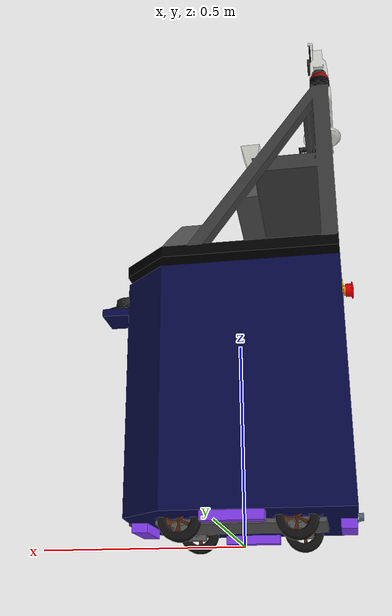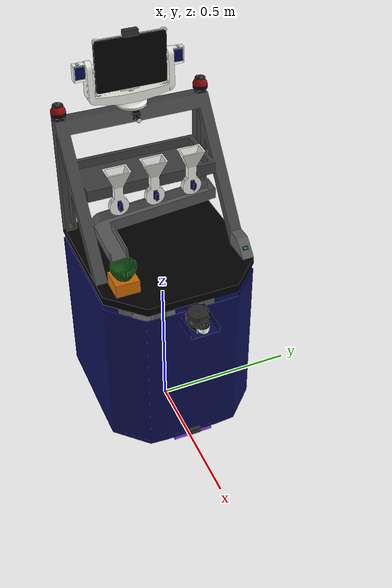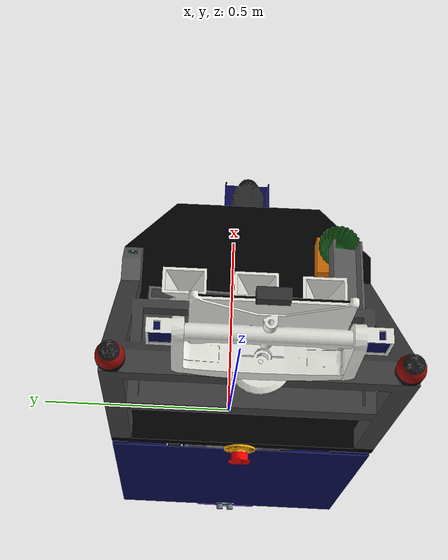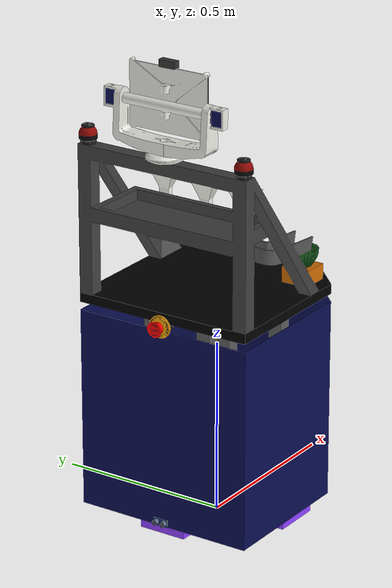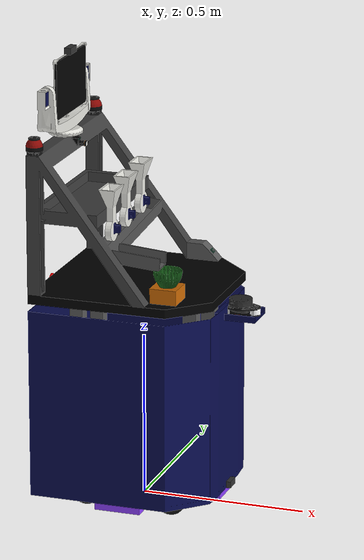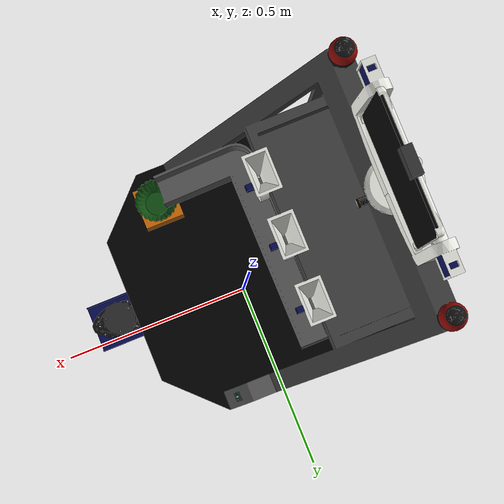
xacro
<?xml version="1.0"?>
<robot name="scobo" xmlns:xacro="http://www.ros.org/wiki/xacro">

  <!-- SCOBO description with the Gazebo plugins and sensors -->
  <xacro:arg name="mesh_dir" default="file://$(find scobo_description)/meshes"/>
  <xacro:include filename="$(find scobo_description)/urdf/scobo.urdf.xacro"/>

  <!-- also given to wheel_odometry in sim.launch.py -->
  <xacro:property name="wheel_radius_sim" value="0.0482"/>
  <xacro:property name="wheel_separation_sim" value="0.3179"/>

  <ros2_control name="GazeboSystem" type="system">
    <hardware>
      <plugin>gazebo_ros2_control/GazeboSystem</plugin>
    </hardware>

    <!-- moved and held by pan_tilt_controller -->
    <joint name="display_pan_joint">
      <command_interface name="position"/>
      <state_interface name="position">
        <param name="initial_value">0.0</param>
      </state_interface>
    </joint>
    <joint name="display_tilt_joint">
      <command_interface name="position"/>
      <state_interface name="position">
        <param name="initial_value">0.0</param>
      </state_interface>
    </joint>
  </ros2_control>

  <xacro:macro name="wheel_slip" params="name">
    <wheel link_name="${name}_wheel">
      <slip_compliance_lateral>3.0</slip_compliance_lateral>
      <slip_compliance_longitudinal>0.0</slip_compliance_longitudinal>
      <wheel_normal_force>${robot_mass * 9.81 / 4}</wheel_normal_force>
    </wheel>
  </xacro:macro>

  <gazebo>
    <plugin filename="libgazebo_ros2_control.so" name="gazebo_ros2_control">
      <parameters>$(find scobo_gazebo)/config/controllers.yaml</parameters>
    </plugin>

    <!-- 4WD skid steer on cmd_vel, 2.4 Nm per wheel. Effective track 1.12 x 0.2838 m
         as the wheels slip in turns. Odometry comes from wheel_odometry -->
    <plugin filename="libgazebo_ros_diff_drive.so" name="diff_drive">
      <update_rate>100</update_rate>
      <num_wheel_pairs>2</num_wheel_pairs>
      <left_joint>front_left_wheel_joint</left_joint>
      <right_joint>front_right_wheel_joint</right_joint>
      <left_joint>rear_left_wheel_joint</left_joint>
      <right_joint>rear_right_wheel_joint</right_joint>
      <wheel_separation>${wheel_separation_sim}</wheel_separation>
      <wheel_separation>${wheel_separation_sim}</wheel_separation>
      <wheel_diameter>${2 * wheel_radius_sim}</wheel_diameter>
      <wheel_diameter>${2 * wheel_radius_sim}</wheel_diameter>
      <max_wheel_torque>2.4</max_wheel_torque>
      <max_wheel_acceleration>0.5</max_wheel_acceleration>
      <publish_odom>false</publish_odom>
      <publish_odom_tf>false</publish_odom_tf>
      <publish_wheel_tf>false</publish_wheel_tf>
    </plugin>

    <!-- encoder angles for wheel_odometry and robot_state_publisher -->
    <plugin filename="libgazebo_ros_joint_state_publisher.so" name="wheel_states">
      <update_rate>50</update_rate>
      <joint_name>front_left_wheel_joint</joint_name>
      <joint_name>rear_left_wheel_joint</joint_name>
      <joint_name>front_right_wheel_joint</joint_name>
      <joint_name>rear_right_wheel_joint</joint_name>
    </plugin>

    <!-- sideways tyre compliance for skid steer turns -->
    <plugin filename="libWheelSlipPlugin.so" name="wheel_slip">
      <xacro:wheel_slip name="front_left"/>
      <xacro:wheel_slip name="rear_left"/>
      <xacro:wheel_slip name="front_right"/>
      <xacro:wheel_slip name="rear_right"/>
    </plugin>

    <!-- true pose, to check odometry -->
    <plugin filename="libgazebo_ros_p3d.so" name="ground_truth">
      <ros>
        <remapping>odom:=ground_truth</remapping>
      </ros>
      <body_name>base_footprint</body_name>
      <frame_name>world</frame_name>
      <update_rate>50</update_rate>
    </plugin>
  </gazebo>

  <!-- fdir1 is the axle, so mu1 is the sideways grip -->
  <xacro:macro name="wheel_contact" params="name">
    <gazebo reference="${name}_wheel">
      <fdir1>0 0 1</fdir1>
      <mu1>0.3</mu1>
      <mu2>0.8</mu2>
      <kp>1e6</kp>
      <kd>100</kd>
      <minDepth>0.001</minDepth>
      <maxVel>0.1</maxVel>
    </gazebo>
  </xacro:macro>

  <xacro:wheel_contact name="front_left"/>
  <xacro:wheel_contact name="rear_left"/>
  <xacro:wheel_contact name="front_right"/>
  <xacro:wheel_contact name="rear_right"/>

  <!-- RPLidar A1, the frame posts behind it block the rear so only 260 deg is used -->
  <xacro:property name="laser_half_fov" value="130"/>
  <xacro:property name="laser_step" value="0.5"/>

  <gazebo reference="laser">
    <sensor name="rplidar" type="ray">
      <pose>0 0 0 0 0 0</pose>
      <update_rate>5.5</update_rate>
      <visualize>false</visualize>
      <ray>
        <scan>
          <horizontal>
            <samples>${int(2 * laser_half_fov / laser_step) + 1}</samples>
            <resolution>1</resolution>
            <min_angle>${-radians(laser_half_fov)}</min_angle>
            <max_angle>${radians(laser_half_fov)}</max_angle>
          </horizontal>
        </scan>
        <range>
          <min>0.15</min>
          <max>12.0</max>
          <resolution>0.001</resolution>
        </range>
        <noise>
          <type>gaussian</type>
          <mean>0.0</mean>
          <stddev>0.01</stddev>
        </noise>
      </ray>
      <plugin name="rplidar" filename="libgazebo_ros_ray_sensor.so">
        <ros>
          <remapping>~/out:=scan</remapping>
        </ros>
        <output_type>sensor_msgs/LaserScan</output_type>
        <frame_name>laser</frame_name>
      </plugin>
    </sensor>
  </gazebo>

  <!-- BNO055, noise from the datasheet noise densities -->
  <xacro:macro name="imu_noise" params="stddev bias">
    <noise type="gaussian">
      <mean>0.0</mean>
      <stddev>${stddev}</stddev>
      <bias_mean>0.0</bias_mean>
      <bias_stddev>${bias}</bias_stddev>
    </noise>
  </xacro:macro>
  <xacro:property name="gyro_stddev" value="${radians(0.014) * sqrt(50)}"/>
  <xacro:property name="gyro_bias" value="0.0003"/>
  <xacro:property name="accel_stddev" value="${150e-6 * 9.81 * sqrt(50)}"/>
  <xacro:property name="accel_bias" value="0.01"/>

  <gazebo reference="imu_link">
    <sensor name="bno055" type="imu">
      <always_on>true</always_on>
      <update_rate>100</update_rate>
      <imu>
        <angular_velocity>
          <x><xacro:imu_noise stddev="${gyro_stddev}" bias="${gyro_bias}"/></x>
          <y><xacro:imu_noise stddev="${gyro_stddev}" bias="${gyro_bias}"/></y>
          <z><xacro:imu_noise stddev="${gyro_stddev}" bias="${gyro_bias}"/></z>
        </angular_velocity>
        <linear_acceleration>
          <x><xacro:imu_noise stddev="${accel_stddev}" bias="${accel_bias}"/></x>
          <y><xacro:imu_noise stddev="${accel_stddev}" bias="${accel_bias}"/></y>
          <z><xacro:imu_noise stddev="${accel_stddev}" bias="${accel_bias}"/></z>
        </linear_acceleration>
      </imu>
      <plugin name="bno055" filename="libgazebo_ros_imu_sensor.so">
        <ros>
          <remapping>~/out:=imu/data</remapping>
        </ros>
        <frame_name>imu_link</frame_name>
        <initial_orientation_as_reference>false</initial_orientation_as_reference>
      </plugin>
    </sensor>
  </gazebo>

  <!-- HC-SR04, 6 cm above the floor so only the upper half of the cone is used -->
  <xacro:property name="sonar_half_fov" value="${radians(7.5)}"/>

  <xacro:macro name="hc_sr04" params="side">
    <gazebo reference="ultrasonic_${side}_link">
      <sensor name="hc_sr04_${side}" type="ray">
        <pose>0 0 0 0 0 0</pose>
        <update_rate>10</update_rate>
        <visualize>false</visualize>
        <ray>
          <scan>
            <horizontal>
              <samples>7</samples>
              <resolution>1</resolution>
              <min_angle>${-sonar_half_fov}</min_angle>
              <max_angle>${sonar_half_fov}</max_angle>
            </horizontal>
            <vertical>
              <samples>4</samples>
              <resolution>1</resolution>
              <min_angle>0</min_angle>
              <max_angle>${sonar_half_fov}</max_angle>
            </vertical>
          </scan>
          <range>
            <min>0.02</min>
            <max>4.0</max>
            <resolution>0.003</resolution>
          </range>
          <noise>
            <type>gaussian</type>
            <mean>0.0</mean>
            <stddev>0.01</stddev>
          </noise>
        </ray>
        <plugin name="hc_sr04_${side}" filename="libgazebo_ros_ray_sensor.so">
          <ros>
            <remapping>~/out:=range/${side}_sim</remapping>
          </ros>
          <output_type>sensor_msgs/Range</output_type>
          <radiation_type>ultrasound</radiation_type>
          <frame_name>ultrasonic_${side}_link</frame_name>
        </plugin>
      </sensor>
    </gazebo>
  </xacro:macro>

  <xacro:hc_sr04 side="rear"/>
  <xacro:hc_sr04 side="front"/>

  <!-- USB webcam on the tablet holder -->
  <gazebo reference="camera_link">
    <sensor name="webcam" type="camera">
      <update_rate>15</update_rate>
      <visualize>false</visualize>
      <camera>
        <horizontal_fov>${radians(60)}</horizontal_fov>
        <image>
          <width>640</width>
          <height>480</height>
          <format>R8G8B8</format>
        </image>
        <clip>
          <near>0.05</near>
          <far>30</far>
        </clip>
        <noise>
          <type>gaussian</type>
          <mean>0.0</mean>
          <stddev>0.007</stddev>
        </noise>
      </camera>
      <plugin name="webcam" filename="libgazebo_ros_camera.so">
        <camera_name>camera</camera_name>
        <frame_name>camera_optical_frame</frame_name>
      </plugin>
    </sensor>
  </gazebo>

  <!-- MLX90640 55 x 35 deg as a depth camera, fake_thermal makes the temperatures -->
  <xacro:property name="thermal_hfov" value="55"/>
  <xacro:property name="thermal_vfov" value="35"/>
  <xacro:property name="thermal_render_width" value="320"/>

  <gazebo reference="thermal_link">
    <sensor name="mlx90640" type="depth">
      <update_rate>4</update_rate>
      <visualize>true</visualize>
      <camera>
        <horizontal_fov>${radians(thermal_hfov)}</horizontal_fov>
        <image>
          <width>${thermal_render_width}</width>
          <height>${int(round(thermal_render_width * tan(radians(thermal_vfov / 2))
                                / tan(radians(thermal_hfov / 2))))}</height>
          <format>R8G8B8</format>
        </image>
        <clip>
          <near>0.05</near>
          <far>10</far>
        </clip>
      </camera>
      <plugin name="mlx90640" filename="libgazebo_ros_camera.so">
        <camera_name>thermal_sim</camera_name>
        <frame_name>thermal_optical_frame</frame_name>
        <min_depth>0.05</min_depth>
        <max_depth>10</max_depth>
      </plugin>
    </sensor>
  </gazebo>

  <gazebo reference="base_footprint">
    <mu1>0.1</mu1>
    <mu2>0.1</mu2>
  </gazebo>

</robot>

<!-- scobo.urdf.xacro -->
<robot name="scobo" xmlns:xacro="http://www.ros.org/wiki/xacro">

  <xacro:include filename="$(find scobo_description)/urdf/inertial.xacro"/>

  <!-- dimensions from cad/scobo/scobo_final.step, meshes from scripts/export_meshes.py.
       base_link is on the floor under the centre of the wheels. -->
  <xacro:arg name="mesh_dir" default="package://scobo_description/meshes"/>
  <xacro:property name="mesh_dir" value="$(arg mesh_dir)"/>

  <xacro:property name="robot_mass" value="25.0"/>

  <!-- PG36M555 wheels, 4WD skid steer -->
  <xacro:property name="wheel_radius" value="0.0482"/>
  <xacro:property name="wheel_width" value="0.0344"/>
  <xacro:property name="wheel_x" value="0.1338"/>    <!-- half wheelbase -->
  <xacro:property name="wheel_y" value="0.1419"/>    <!-- half track -->
  <xacro:property name="wheel_mass" value="0.3"/>
  <!-- gear motor output, 2.4 Nm at 50 RPM -->
  <xacro:property name="wheel_max_torque" value="2.4"/>
  <xacro:property name="wheel_max_speed" value="${50 * 2 * pi / 60}"/>

  <!-- lower body shell, the lidar scans through the gap above it -->
  <xacro:property name="body_x_min" value="-0.2675"/>
  <xacro:property name="body_x_max" value="0.2671"/>
  <xacro:property name="body_width" value="0.530"/>
  <xacro:property name="body_z_min" value="0.0528"/>
  <xacro:property name="body_z_max" value="0.6298"/>
  <xacro:property name="plate_z_min" value="0.6528"/>
  <xacro:property name="plate_z_max" value="0.6808"/>

  <!-- rear posts and top beam of the upper frame -->
  <xacro:property name="frame_rear_x" value="-0.2475"/>
  <xacro:property name="frame_top_z" value="1.1028"/>

  <!-- RPLidar A1 scan centre, on the front bracket -->
  <xacro:property name="laser_x" value="0.3028"/>
  <xacro:property name="laser_z" value="0.641"/>

  <!-- pan axis on the pan-tilt plate, tilt axis through the MG995 horns -->
  <xacro:property name="pan_x" value="-0.2448"/>
  <xacro:property name="pan_z" value="1.1132"/>
  <xacro:property name="tilt_dx" value="-0.0025"/>
  <xacro:property name="tilt_dz" value="0.1364"/>

  <!-- iPad and its holder from the tilt axis -->
  <xacro:property name="holder_dx" value="0.0183"/>
  <xacro:property name="holder_dz" value="0.0134"/>
  <xacro:property name="holder_size" value="0.014 0.242 0.186"/>
  <xacro:property name="screen_top_dz" value="0.0992"/>

  <!-- estimated split of the 25 kg, the lower body gets the rest -->
  <xacro:property name="upper_mass" value="5.0"/>
  <xacro:property name="pan_mass" value="0.3"/>
  <xacro:property name="display_mass" value="0.6"/>
  <xacro:property name="laser_mass" value="0.17"/>
  <xacro:property name="sensor_mass" value="0.03"/>
  <xacro:property name="pill_servo_mass" value="0.009"/>
  <xacro:property name="tilt_servo_mass" value="0.055"/>
  <xacro:property name="body_mass"
    value="${robot_mass - 4*wheel_mass - upper_mass - pan_mass - display_mass - laser_mass
            - 5*sensor_mass - 3*pill_servo_mass - 2*tilt_servo_mass}"/>

  <!-- for the boxes, the meshes have their own colours -->
  <material name="sensor_black"><color rgba="0.2 0.2 0.2 1"/></material>
  <material name="uv_violet"><color rgba="0.55 0.25 1.0 1"/></material>

  <link name="base_footprint"/>

  <joint name="base_joint" type="fixed">
    <parent link="base_footprint"/>
    <child link="base_link"/>
    <origin xyz="0 0 0" rpy="0 0 0"/>
  </joint>

  <!-- body shell, plates, motors, e-stop, HC-SR04 and the MAX30102 on its platform -->
  <link name="base_link">
    <visual>
      <geometry><mesh filename="${mesh_dir}/lower_body.dae"/></geometry>
    </visual>
    <collision>
      <origin xyz="${(body_x_min + body_x_max) / 2} 0 ${(body_z_min + body_z_max) / 2}"/>
      <geometry>
        <box size="${body_x_max - body_x_min} ${body_width} ${body_z_max - body_z_min}"/>
      </geometry>
    </collision>
    <xacro:box_inertial m="${body_mass}" x="${body_x_max - body_x_min}" y="${body_width}"
                        z="${body_z_max - body_z_min}">
      <origin xyz="${(body_x_min + body_x_max) / 2} 0 ${(body_z_min + body_z_max) / 2}"/>
    </xacro:box_inertial>
  </link>

  <!-- upper frame with the thermal camera, signal lights and pill dispenser -->
  <joint name="upper_frame_joint" type="fixed">
    <parent link="base_link"/>
    <child link="upper_frame"/>
    <origin xyz="0 0 0"/>
  </joint>

  <link name="upper_frame">
    <visual>
      <geometry><mesh filename="${mesh_dir}/upper_frame.dae"/></geometry>
    </visual>
    <!-- top plate, rear posts and top beam -->
    <collision>
      <origin xyz="${(body_x_min + body_x_max) / 2} 0 ${(plate_z_min + plate_z_max) / 2}"/>
      <geometry>
        <box size="${body_x_max - body_x_min} ${body_width} ${plate_z_max - plate_z_min}"/>
      </geometry>
    </collision>
    <collision>
      <origin xyz="${frame_rear_x} 0 ${(plate_z_max + frame_top_z) / 2}"/>
      <geometry><box size="0.04 ${body_width} ${frame_top_z - plate_z_max}"/></geometry>
    </collision>
    <xacro:box_inertial m="${upper_mass}" x="0.5" y="${body_width}" z="0.45">
      <origin xyz="-0.05 0 0.84"/>
    </xacro:box_inertial>
  </link>

  <!-- SG30 pill servos, numbered from the right as in the CAD -->
  <xacro:macro name="servo" params="name parent mesh mass xyz yaw:=0">
    <joint name="${name}_joint" type="fixed">
      <parent link="${parent}"/>
      <child link="${name}"/>
      <origin xyz="${xyz}"/>
    </joint>
    <link name="${name}">
      <visual>
        <origin xyz="0 0 0" rpy="0 0 ${yaw}"/>
        <geometry><mesh filename="${mesh_dir}/${mesh}.dae"/></geometry>
      </visual>
      <xacro:point_inertial m="${mass}"/>
    </link>
  </xacro:macro>

  <xacro:servo name="pill_servo_1" parent="upper_frame" mesh="sg30" mass="${pill_servo_mass}"
               xyz="-0.0434 -0.1245 0.8639"/>
  <xacro:servo name="pill_servo_2" parent="upper_frame" mesh="sg30" mass="${pill_servo_mass}"
               xyz="-0.0434 0 0.8723"/>
  <xacro:servo name="pill_servo_3" parent="upper_frame" mesh="sg30" mass="${pill_servo_mass}"
               xyz="-0.0434 0.1313 0.8783"/>

  <!-- all wheels turn about +y, positive drives forward -->
  <xacro:macro name="wheel" params="name x y yaw">
    <joint name="${name}_wheel_joint" type="continuous">
      <parent link="base_link"/>
      <child link="${name}_wheel"/>
      <origin xyz="${x} ${y} ${wheel_radius}"/>
      <axis xyz="0 1 0"/>
      <limit effort="${wheel_max_torque}" velocity="${wheel_max_speed}"/>
    </joint>

    <link name="${name}_wheel">
      <visual>
        <origin xyz="0 0 0" rpy="0 0 ${yaw}"/>
        <geometry><mesh filename="${mesh_dir}/wheel.dae"/></geometry>
      </visual>
      <collision>
        <origin xyz="0 0 0" rpy="${pi/2} 0 0"/>
        <geometry><cylinder radius="${wheel_radius}" length="${wheel_width}"/></geometry>
      </collision>
      <xacro:wheel_inertial m="${wheel_mass}" r="${wheel_radius}" h="${wheel_width}"/>
    </link>
  </xacro:macro>

  <!-- the wheel mesh is a right wheel, left wheels are turned around -->
  <xacro:wheel name="front_left" x="${wheel_x}" y="${wheel_y}" yaw="${pi}"/>
  <xacro:wheel name="rear_left" x="${-wheel_x}" y="${wheel_y}" yaw="${pi}"/>
  <xacro:wheel name="front_right" x="${wheel_x}" y="${-wheel_y}" yaw="0"/>
  <xacro:wheel name="rear_right" x="${-wheel_x}" y="${-wheel_y}" yaw="0"/>

  <!-- UV lamp bars under the body, visual only -->
  <xacro:macro name="uv_lamp" params="name xyz size">
    <joint name="${name}_joint" type="fixed">
      <parent link="base_link"/>
      <child link="${name}"/>
      <origin xyz="${xyz}"/>
    </joint>
    <link name="${name}">
      <visual>
        <geometry><box size="${size}"/></geometry>
        <material name="uv_violet"/>
      </visual>
    </link>
  </xacro:macro>

  <xacro:uv_lamp name="uv_lamp_front" xyz="0.2428 0.0018 0.0566" size="0.0376 0.1412 0.0518"/>
  <xacro:uv_lamp name="uv_lamp_rear" xyz="-0.2472 0.0018 0.0566" size="0.0376 0.1412 0.0518"/>
  <xacro:uv_lamp name="uv_lamp_left" xyz="-0.0003 0.2396 0.0566" size="0.1412 0.0376 0.0518"/>
  <xacro:uv_lamp name="uv_lamp_right" xyz="0.0050 -0.2412 0.0566" size="0.1412 0.0376 0.0518"/>

  <!-- RPLidar A1, frame origin at the scan centre -->
  <joint name="laser_joint" type="fixed">
    <parent link="base_link"/>
    <child link="laser"/>
    <origin xyz="${laser_x} 0 ${laser_z}" rpy="0 0 0"/>
  </joint>

  <link name="laser">
    <visual>
      <origin xyz="${-laser_x} 0 ${-laser_z}"/>
      <geometry><mesh filename="${mesh_dir}/laser.dae"/></geometry>
    </visual>
    <collision>
      <origin xyz="0 0 -0.016"/>
      <geometry><cylinder radius="0.035" length="0.056"/></geometry>
    </collision>
    <xacro:point_inertial m="${laser_mass}"/>
  </link>

  <!-- BNO055 on the first level plate, not in the CAD -->
  <joint name="imu_joint" type="fixed">
    <parent link="base_link"/>
    <child link="imu_link"/>
    <origin xyz="0 0 0.2548"/>
  </joint>

  <link name="imu_link">
    <visual>
      <geometry><box size="0.027 0.020 0.004"/></geometry>
      <material name="sensor_black"/>
    </visual>
    <xacro:point_inertial m="${sensor_mass}"/>
  </link>

  <!-- HC-SR04 on the rear face, looking backwards -->
  <joint name="ultrasonic_rear_joint" type="fixed">
    <parent link="base_link"/>
    <child link="ultrasonic_rear_link"/>
    <origin xyz="-0.2816 0.0051 0.0633" rpy="0 0 ${pi}"/>
  </joint>

  <link name="ultrasonic_rear_link">
    <xacro:point_inertial m="${sensor_mass}"/>
  </link>

  <!-- second HC-SR04 low on the front face, not in the CAD yet -->
  <joint name="ultrasonic_front_joint" type="fixed">
    <parent link="base_link"/>
    <child link="ultrasonic_front_link"/>
    <origin xyz="0.2812 0 0.0633"/>
  </joint>

  <link name="ultrasonic_front_link">
    <visual>
      <origin xyz="-0.0071 0 0"/>
      <geometry><box size="0.0142 0.045 0.020"/></geometry>
      <material name="sensor_black"/>
    </visual>
    <xacro:point_inertial m="${sensor_mass}"/>
  </link>

  <!-- MAX30102, z out of the 45 deg face -->
  <joint name="max30102_joint" type="fixed">
    <parent link="base_link"/>
    <child link="max30102_link"/>
    <origin xyz="0.1330 0.2451 0.7062" rpy="0 ${pi/4} 0"/>
  </joint>

  <link name="max30102_link">
    <xacro:point_inertial m="${sensor_mass}"/>
  </link>

  <!-- pan-tilt display, a stepper for pan and two MG995 servos for tilt -->
  <joint name="display_pan_joint" type="revolute">
    <parent link="upper_frame"/>
    <child link="display_pan_link"/>
    <origin xyz="${pan_x} 0 ${pan_z}"/>
    <axis xyz="0 0 1"/>
    <limit lower="${-pi/2}" upper="${pi/2}" effort="0.4" velocity="3.0"/>
  </joint>

  <!-- turntable, yoke and the servo brackets -->
  <link name="display_pan_link">
    <visual>
      <origin xyz="${-pan_x} 0 ${-pan_z}"/>
      <geometry><mesh filename="${mesh_dir}/display_pan.dae"/></geometry>
    </visual>
    <xacro:point_inertial m="${pan_mass}"/>
  </link>

  <!-- MG995 tilt servos on the yoke arms -->
  <xacro:servo name="tilt_servo_right" parent="display_pan_link" mesh="mg995"
               mass="${tilt_servo_mass}" xyz="-0.0028 -0.1685 0.1344"/>
  <xacro:servo name="tilt_servo_left" parent="display_pan_link" mesh="mg995"
               mass="${tilt_servo_mass}" xyz="-0.0022 0.1626 0.1344" yaw="${pi}"/>

  <joint name="display_tilt_joint" type="revolute">
    <parent link="display_pan_link"/>
    <child link="display_link"/>
    <origin xyz="${tilt_dx} 0 ${tilt_dz}"/>
    <axis xyz="0 1 0"/>
    <!-- both MG995 together -->
    <limit lower="${-pi/4}" upper="${pi/4}" effort="1.8" velocity="5.0"/>
  </joint>

  <!-- iPad, its holder with the clips, the tilt shaft and the servo horns -->
  <link name="display_link">
    <visual>
      <origin xyz="${-(pan_x + tilt_dx)} 0 ${-(pan_z + tilt_dz)}"/>
      <geometry><mesh filename="${mesh_dir}/display.dae"/></geometry>
    </visual>
    <collision>
      <origin xyz="${holder_dx} 0 ${holder_dz}"/>
      <geometry><box size="${holder_size}"/></geometry>
    </collision>
    <xacro:box_inertial m="${display_mass}" x="0.014" y="0.242" z="0.186">
      <origin xyz="${holder_dx} 0 ${holder_dz}"/>
    </xacro:box_inertial>
  </link>

  <!-- optical frames are z forward, x right, y down -->
  <xacro:macro name="camera_frames" params="name parent xyz box:=false">
    <joint name="${name}_joint" type="fixed">
      <parent link="${parent}"/>
      <child link="${name}_link"/>
      <origin xyz="${xyz}"/>
    </joint>
    <link name="${name}_link">
      <xacro:if value="${box}">
        <visual>
          <geometry><box size="0.02 0.05 0.02"/></geometry>
          <material name="sensor_black"/>
        </visual>
      </xacro:if>
      <xacro:point_inertial m="${sensor_mass}"/>
    </link>
    <joint name="${name}_optical_joint" type="fixed">
      <parent link="${name}_link"/>
      <child link="${name}_optical_frame"/>
      <origin xyz="0 0 0" rpy="${-pi/2} 0 ${-pi/2}"/>
    </joint>
    <link name="${name}_optical_frame"/>
  </xacro:macro>

  <!-- MLX90640 thermal camera under the top beam, looking forward -->
  <xacro:camera_frames name="thermal" parent="upper_frame" xyz="-0.1778 0.002 1.0775"/>

  <!-- webcam on top of the tablet holder, not in the CAD -->
  <xacro:camera_frames name="camera" parent="display_link"
                       xyz="0.0204 0 ${screen_top_dz + 0.01}" box="true"/>

</robot>

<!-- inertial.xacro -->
<robot xmlns:xacro="http://www.ros.org/wiki/xacro">

  <!-- solid box, origin at its centre -->
  <xacro:macro name="box_inertial" params="m x y z *origin">
    <inertial>
      <xacro:insert_block name="origin"/>
      <mass value="${m}"/>
      <inertia ixx="${m * (y*y + z*z) / 12}" ixy="0" ixz="0"
               iyy="${m * (x*x + z*z) / 12}" iyz="0"
               izz="${m * (x*x + y*y) / 12}"/>
    </inertial>
  </xacro:macro>

  <!-- solid cylinder with its axis along y (wheels) -->
  <xacro:macro name="wheel_inertial" params="m r h">
    <inertial>
      <origin xyz="0 0 0"/>
      <mass value="${m}"/>
      <inertia ixx="${m * (3*r*r + h*h) / 12}" ixy="0" ixz="0"
               iyy="${m * r*r / 2}" iyz="0"
               izz="${m * (3*r*r + h*h) / 12}"/>
    </inertial>
  </xacro:macro>

  <!-- small parts where only the mass matters -->
  <xacro:macro name="point_inertial" params="m">
    <inertial>
      <origin xyz="0 0 0"/>
      <mass value="${m}"/>
      <inertia ixx="1e-5" ixy="0" ixz="0" iyy="1e-5" iyz="0" izz="1e-5"/>
    </inertial>
  </xacro:macro>

</robot>
